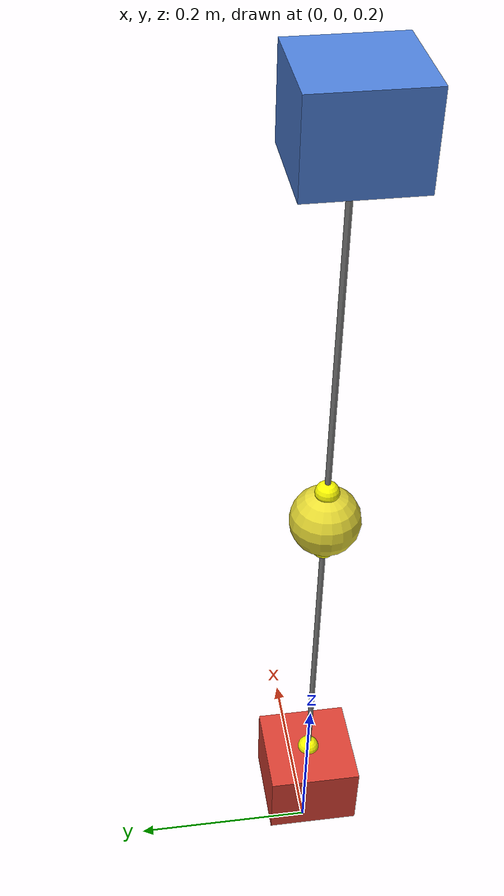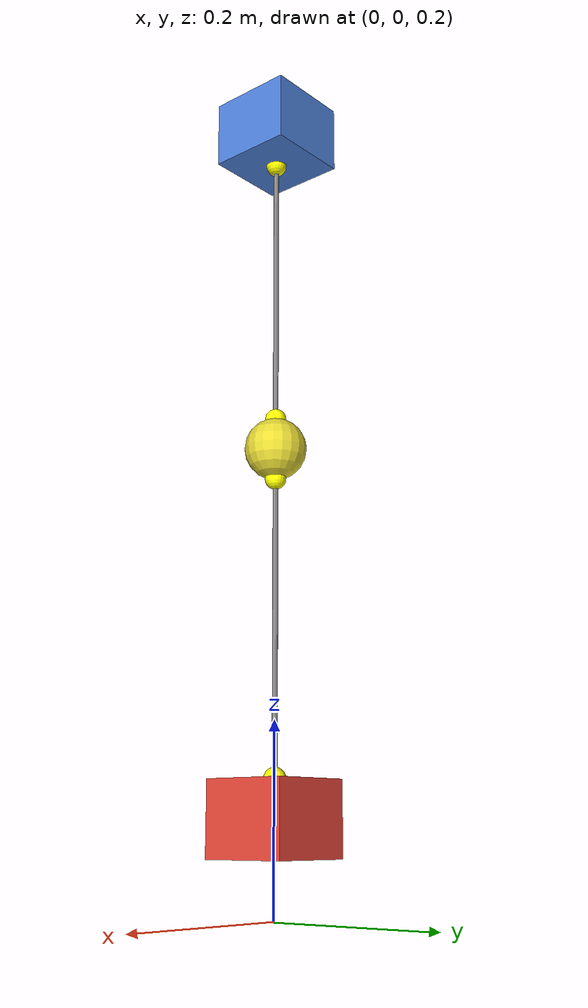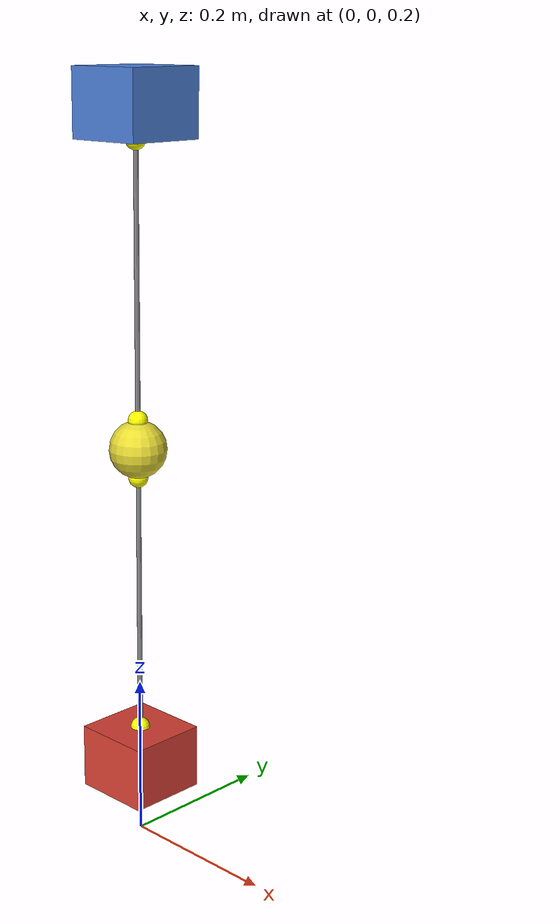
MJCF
<mujoco model="pulley">
  <option gravity="0 0 0" timestep="0.002"/>

  <worldbody>
    <!-- Top mass (blue, load) — vertical rail, spring-centered -->
    <body name="top" pos="0 0 1.1">
      <joint name="j_top" type="slide" axis="0 0 1" damping="1.0"
             stiffness="8" springref="0"/>
      <geom name="top_geom" type="box" size="0.05 0.05 0.04"
            rgba="0.3 0.5 0.85 1" mass="1.0"/>
      <site name="s1" pos="0 0 -0.04" size="0.012" rgba="1 1 0 1"/>
    </body>

    <!-- Pulley anchor (yellow, fixed, between the two masses) -->
    <body name="anchor" pos="0 0 0.7">
      <geom name="anchor_geom" type="sphere" size="0.035"
            rgba="0.9 0.85 0.2 1" contype="0" conaffinity="0"/>
      <site name="s2" pos="0 0 0.035" size="0.012" rgba="1 1 0 1"/>
      <site name="s3" pos="0 0 -0.035" size="0.012" rgba="1 1 0 1"/>
    </body>

    <!-- Bottom mass (red, effort/pull side) — vertical rail, spring-centered -->
    <body name="bottom" pos="0 0 0.3">
      <joint name="j_bot" type="slide" axis="0 0 1" damping="1.0"
             stiffness="8" springref="0"/>
      <geom name="bot_geom" type="box" size="0.05 0.05 0.04"
            rgba="0.85 0.25 0.2 1" mass="1.0"/>
      <site name="s4" pos="0 0 0.04" size="0.012" rgba="1 1 0 1"/>
    </body>
  </worldbody>

  <tendon>
    <spatial name="pulley_tendon" stiffness="500" damping="10">
      <site site="s1"/>
      <site site="s2"/>
      <pulley divisor="2"/>
      <site site="s3"/>
      <site site="s4"/>
    </spatial>
  </tendon>

  <actuator>
    <motor name="drive" joint="j_bot" gear="1"/>
  </actuator>

  <sensor>
    <tendonpos name="ten_pos" tendon="pulley_tendon"/>
  </sensor>
</mujoco>
